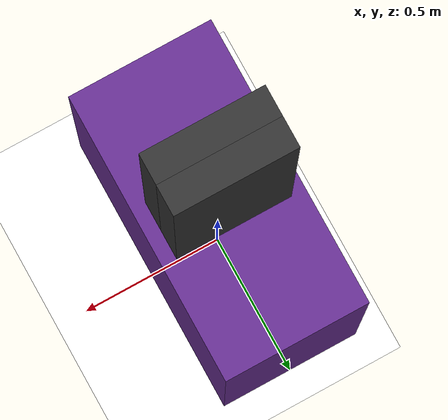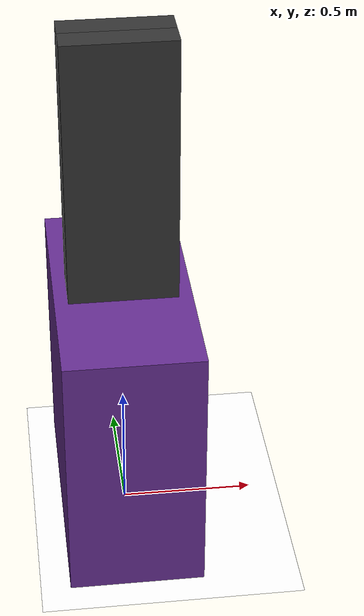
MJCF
<mujoco>
    <compiler angle="radian" />
	<option gravity="0 0 -9.81">
		<flag contact="enable" />
	</option>
	<worldbody>
        <light diffuse=".5 .5 .5" pos="0 0 5" dir="0 0 -1" />
		<geom type="plane" size="20 20 0.1" rgba="1 1 1 1" />

        <body name="base" pos="0 0 0.5" euler="0 0 0">
            <geom type="box" size="0.25 0.5 0.5" rgba="0.4 0.18 0.57 1" />
            <inertial pos="0 0 0" mass="50" diaginertia="1.0 1.0 1.0" />
            <body name="finger_right" pos="0 0.05 1" euler="0 0 0">
                <joint name="right_finger_joint" type="slide" axis="0 1 0" pos="0 0 0"  />
                <geom type="box" size="0.2 0.05 0.5" rgba="0.2 0.2 0.2 1" />
                <inertial pos="0 0 0" mass="5" diaginertia="1.0 1.0 1.0" />
            </body>
            <body name="finger_left" pos="0 -0.05 1" euler="0 0 3.1415926535">
                <joint name="left_finger_joint" type="slide" axis="0 1 0" pos="0 0 0"  />
                <geom type="box" size="0.2 0.05 0.5" rgba="0.2 0.2 0.2 1" />
                <inertial pos="0 0 0" mass="5" diaginertia="1.0 1.0 1.0" />
            </body>
        </body>
	</worldbody>
    <actuator>
        <!-- Right finger position actuator -->
        <position name="act_pos_right_finger_joint" joint="right_finger_joint"
                  kp="100.0" kv="0.0"
                  ctrlrange="-0.5 0.5" forcerange="-100 100"/>

        <!-- Left finger position actuator (mimic joint) -->
        <position name="act_pos_left_finger_joint" joint="left_finger_joint"
                  kp="100.0" kv="0.0"
                  ctrlrange="-0.5 0.5" forcerange="-100 100"/>
    </actuator>
    <contact>
        <exclude body1="finger_right" body2="finger_left" />
    </contact>
</mujoco>
